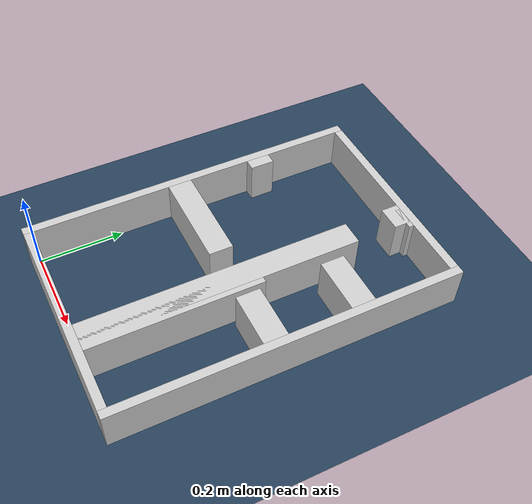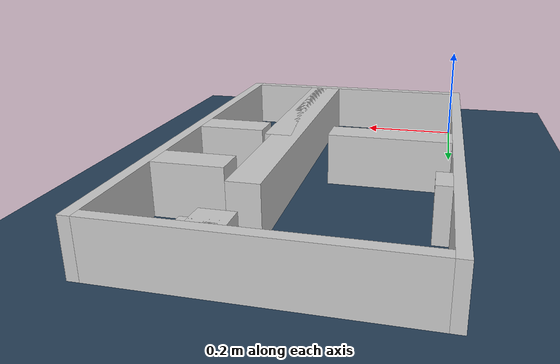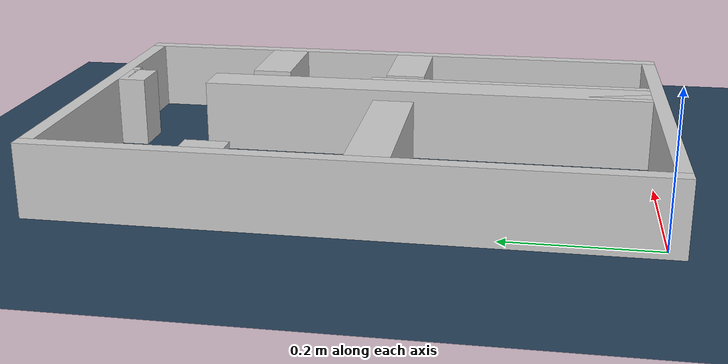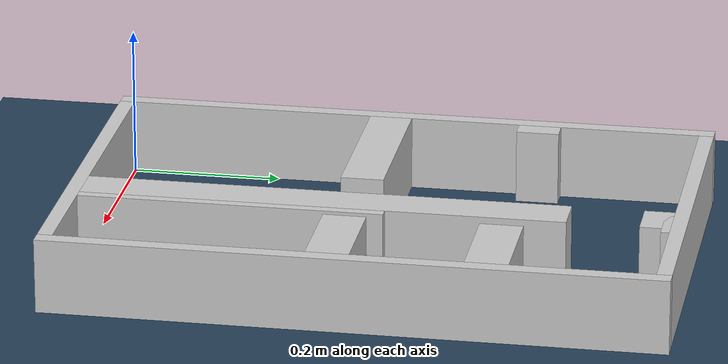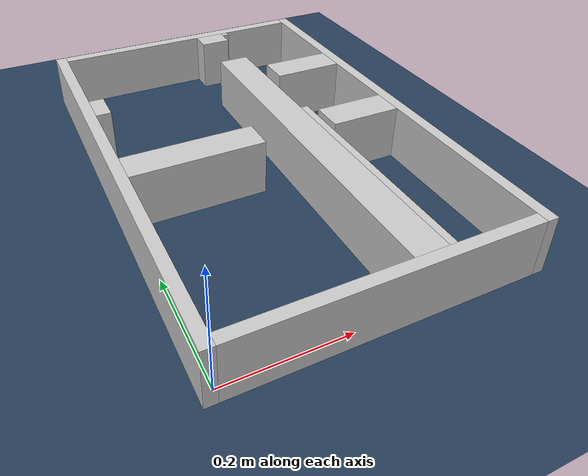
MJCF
<?xml version="1.0" ?>
<mujoco model="generated_real_template">
  <compiler angle="degree"/>
  <option timestep="0.002" integrator="implicitfast" iterations="100" cone="elliptic"/>
  <default>
    <geom density="1"/>
  </default>
  <asset>
    <texture builtin="gradient" height="3072" rgb1="0.3 0.5 0.7" rgb2="0 0 0" type="skybox" width="512"/>
    <texture builtin="checker" height="300" mark="edge" markrgb="0.8 0.8 0.8" name="groundplane" rgb1="0.2 0.3 0.4" rgb2="0.1 0.2 0.3" type="2d" width="300"/>
    <material name="groundplane" reflectance="0.2" texrepeat="5 5" texture="groundplane" texuniform="true"/>
  </asset>
  <worldbody>
    <light dir="0 0 -1" directional="true" pos="0 0 1.5"/>
    <geom name="floor" type="plane" condim="4" friction="0.5 0.005 0.001" material="groundplane" size="0 0 0.05"/>
    <body name="walls">
      <geom name="wall_boundary_left" type="box" condim="4" friction="1.0 0.005 0.0001" rgba="0.8 0.8 0.8 1" pos="-0.010000 0.387500 0.050000" euler="0 0 0.000000" size="0.010000 0.407500 0.050000"/>
      <geom name="wall_boundary_right" type="box" condim="4" friction="1.0 0.005 0.0001" rgba="0.8 0.8 0.8 1" pos="0.500000 0.387500 0.050000" euler="0 0 0.000000" size="0.010000 0.407500 0.050000"/>
      <geom name="wall_boundary_bottom" type="box" condim="4" friction="1.0 0.005 0.0001" rgba="0.8 0.8 0.8 1" pos="0.245000 -0.010000 0.050000" euler="0 0 0.000000" size="0.245000 0.010000 0.050000"/>
      <geom name="wall_boundary_top" type="box" condim="4" friction="1.0 0.005 0.0001" rgba="0.8 0.8 0.8 1" pos="0.245000 0.785000 0.050000" euler="0 0 0.000000" size="0.245000 0.010000 0.050000"/>
      <geom name="wall_inner_1_1" type="box" condim="4" friction="1.0 0.005 0.0001" rgba="0.8 0.8 0.8 1" pos="0.308843 0.320190 0.050000" euler="0 0 90.000000" size="0.320190 0.028500 0.050000"/>
      <geom name="wall_inner_1_2" type="box" condim="4" friction="1.0 0.005 0.0001" rgba="0.8 0.8 0.8 1" pos="0.308843 0.755052 0.050000" euler="0 0 90.000000" size="0.019948 0.028500 0.050000"/>
      <geom name="wall_inner_2_1" type="box" condim="4" friction="1.0 0.005 0.0001" rgba="0.8 0.8 0.8 1" pos="0.115273 0.355860 0.050000" euler="0 0 0.000000" size="0.115273 0.028500 0.050000"/>
      <geom name="wall_inner_2_2" type="box" condim="4" friction="1.0 0.005 0.0001" rgba="0.8 0.8 0.8 1" pos="0.425841 0.355860 0.050000" euler="0 0 0.000000" size="0.064159 0.028500 0.050000"/>
      <geom name="wall_inner_3_1" type="box" condim="4" friction="1.0 0.005 0.0001" rgba="0.8 0.8 0.8 1" pos="0.321970 0.202029 0.050000" euler="0 0 90.000000" size="0.202029 0.028500 0.050000"/>
      <geom name="wall_inner_3_2" type="box" condim="4" friction="1.0 0.005 0.0001" rgba="0.8 0.8 0.8 1" pos="0.321970 0.769342 0.050000" euler="0 0 90.000000" size="0.005658 0.028500 0.050000"/>
      <geom name="wall_inner_4_1" type="box" condim="4" friction="1.0 0.005 0.0001" rgba="0.8 0.8 0.8 1" pos="0.013358 0.559844 0.050000" euler="0 0 0.000000" size="0.013358 0.028500 0.050000"/>
      <geom name="wall_inner_4_2" type="box" condim="4" friction="1.0 0.005 0.0001" rgba="0.8 0.8 0.8 1" pos="0.424786 0.559844 0.050000" euler="0 0 0.000000" size="0.065214 0.028500 0.050000"/>
    </body>
  </worldbody>
</mujoco>
